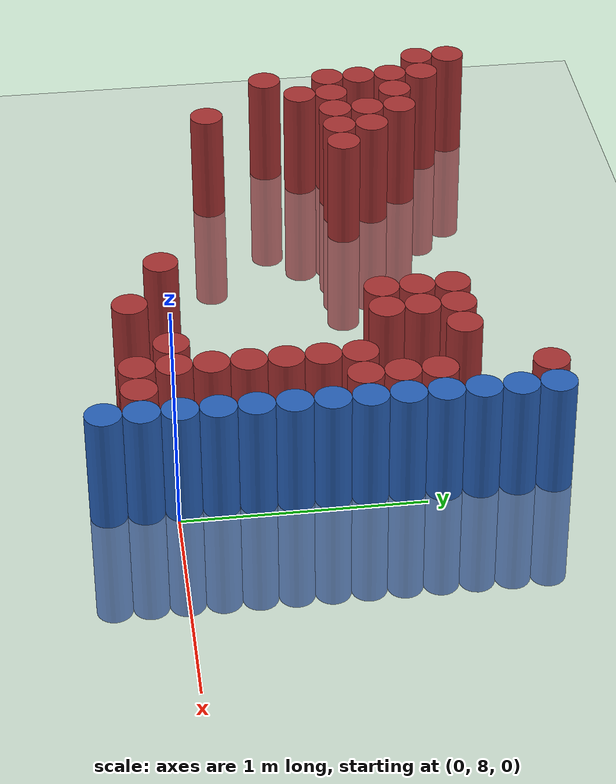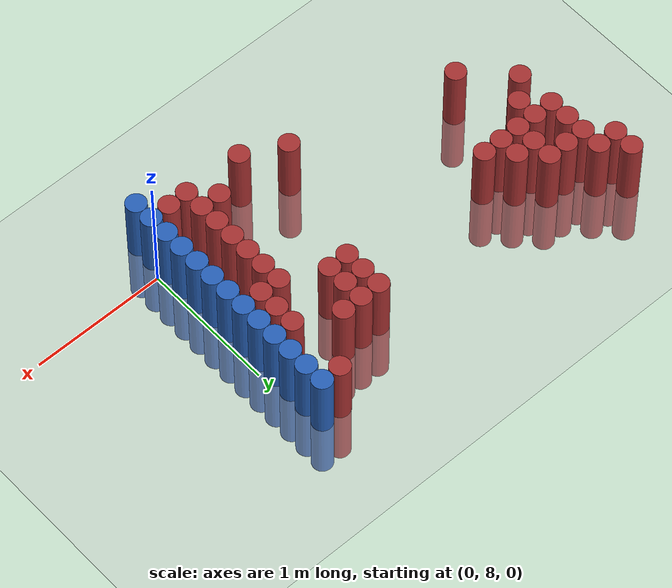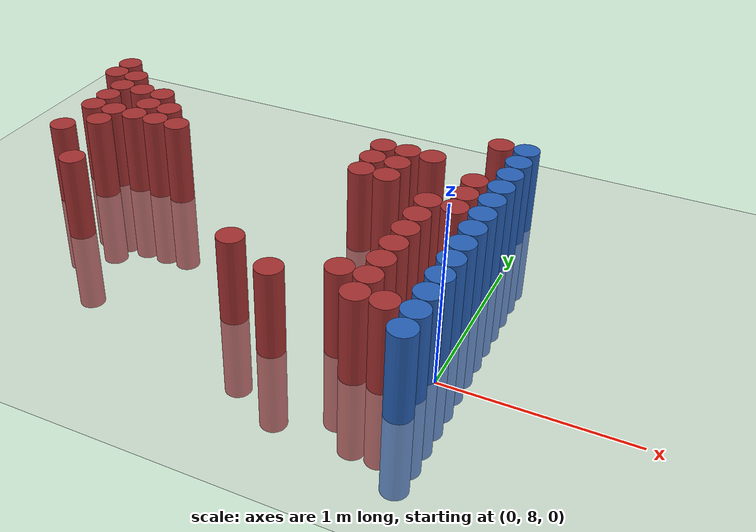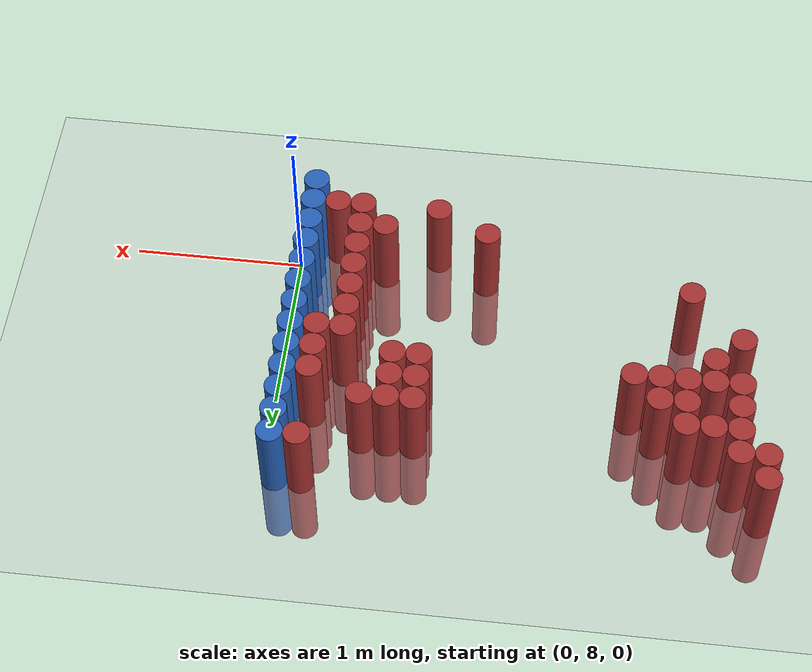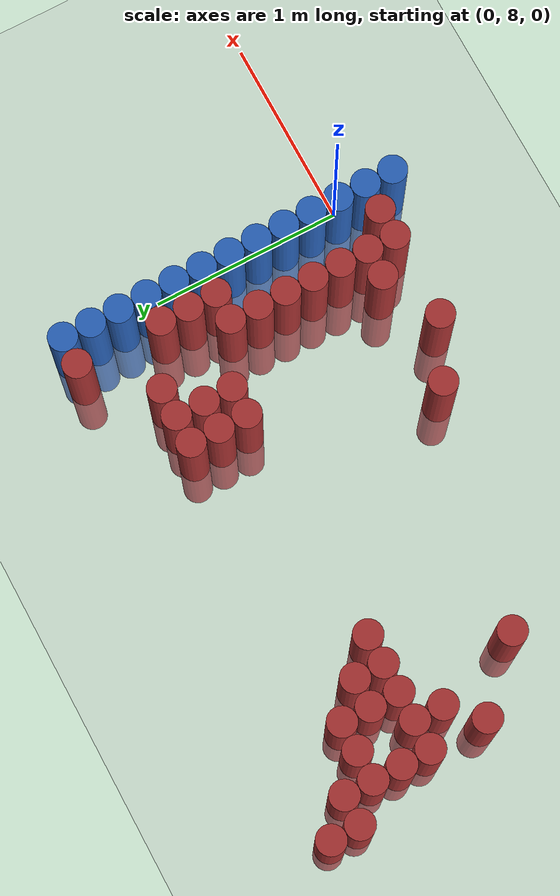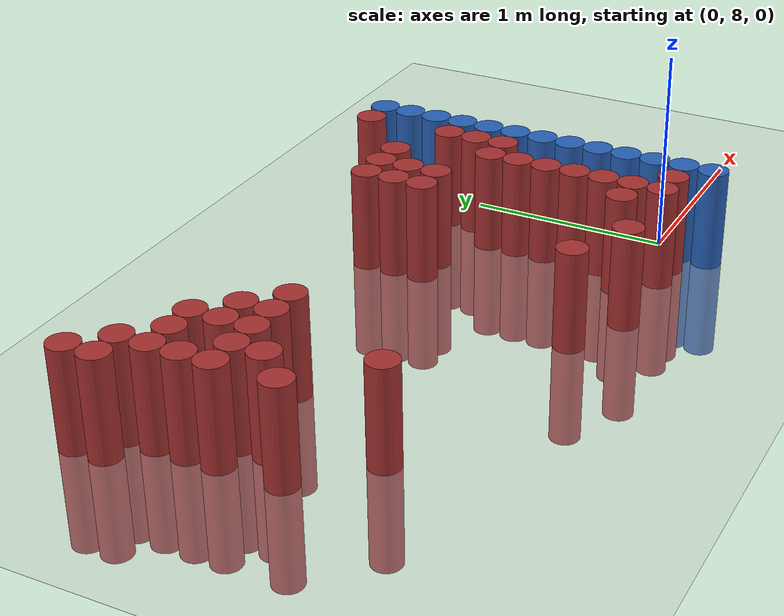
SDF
<sdf version="1.6">
 <world name="default">
  <model name="ground_plane">
   <static>1</static>
   <link name="link">
    <collision name="collision">
     <geometry><plane><normal>0 0 1</normal><size>100 100</size></plane></geometry>
     <surface><friction><ode><mu>100</mu><mu2>50</mu2></ode></friction></surface>
    </collision>
    <visual name="visual">
     <cast_shadows>0</cast_shadows>
     <geometry><plane><normal>0 0 1</normal><size>100 100</size></plane></geometry>
     <material>
      <script><uri>file://media/materials/scripts/gazebo.material</uri><name>Gazebo/Grey</name></script>
     </material>
    </visual>
   </link>
  </model>
  <model name="unit_cylinder_228">
   <static>1</static>
   <pose>-2.775000 9.375000 0.000000 0.000000 0.000000 0.000000</pose>
   <link name="link">
    <inertial>
     <mass>1</mass>
     <inertia><ixx>0.145833</ixx><ixy>0</ixy><ixz>0</ixz><iyy>0.145833</iyy><iyz>0</iyz><izz>0.125</izz></inertia>
    </inertial>
    <collision name="collision">
     <geometry><cylinder><radius>0.075000</radius><length>1</length></cylinder></geometry>
    </collision>
    <visual name="visual">
     <geometry><cylinder><radius>0.075000</radius><length>1</length></cylinder></geometry>
     <material>
      <ambient>0.648000 0.192000 0.192000 1</ambient>
      <diffuse>0.648000 0.192000 0.192000 1</diffuse>
     </material>
     <material>
      <script><name>Gazebo/Grey</name><uri>file://media/materials/scripts/gazebo.material</uri></script>
     </material>
    </visual>
   </link>
  </model>
  <model name="unit_cylinder_229">
   <static>1</static>
   <pose>-2.775000 9.525000 0.000000 0.000000 0.000000 0.000000</pose>
   <link name="link">
    <inertial>
     <mass>1</mass>
     <inertia><ixx>0.145833</ixx><ixy>0</ixy><ixz>0</ixz><iyy>0.145833</iyy><iyz>0</iyz><izz>0.125</izz></inertia>
    </inertial>
    <collision name="collision">
     <geometry><cylinder><radius>0.075000</radius><length>1</length></cylinder></geometry>
    </collision>
    <visual name="visual">
     <geometry><cylinder><radius>0.075000</radius><length>1</length></cylinder></geometry>
     <material>
      <ambient>0.648000 0.192000 0.192000 1</ambient>
      <diffuse>0.648000 0.192000 0.192000 1</diffuse>
     </material>
     <material>
      <script><name>Gazebo/Grey</name><uri>file://media/materials/scripts/gazebo.material</uri></script>
     </material>
    </visual>
   </link>
  </model>
  <model name="unit_cylinder_237">
   <static>1</static>
   <pose>-2.625000 8.625000 0.000000 0.000000 0.000000 0.000000</pose>
   <link name="link">
    <inertial>
     <mass>1</mass>
     <inertia><ixx>0.145833</ixx><ixy>0</ixy><ixz>0</ixz><iyy>0.145833</iyy><iyz>0</iyz><izz>0.125</izz></inertia>
    </inertial>
    <collision name="collision">
     <geometry><cylinder><radius>0.075000</radius><length>1</length></cylinder></geometry>
    </collision>
    <visual name="visual">
     <geometry><cylinder><radius>0.075000</radius><length>1</length></cylinder></geometry>
     <material>
      <ambient>0.648000 0.192000 0.192000 1</ambient>
      <diffuse>0.648000 0.192000 0.192000 1</diffuse>
     </material>
     <material>
      <script><name>Gazebo/Grey</name><uri>file://media/materials/scripts/gazebo.material</uri></script>
     </material>
    </visual>
   </link>
  </model>
  <model name="unit_cylinder_238">
   <static>1</static>
   <pose>-2.625000 8.925000 0.000000 0.000000 0.000000 0.000000</pose>
   <link name="link">
    <inertial>
     <mass>1</mass>
     <inertia><ixx>0.145833</ixx><ixy>0</ixy><ixz>0</ixz><iyy>0.145833</iyy><iyz>0</iyz><izz>0.125</izz></inertia>
    </inertial>
    <collision name="collision">
     <geometry><cylinder><radius>0.075000</radius><length>1</length></cylinder></geometry>
    </collision>
    <visual name="visual">
     <geometry><cylinder><radius>0.075000</radius><length>1</length></cylinder></geometry>
     <material>
      <ambient>0.648000 0.192000 0.192000 1</ambient>
      <diffuse>0.648000 0.192000 0.192000 1</diffuse>
     </material>
     <material>
      <script><name>Gazebo/Grey</name><uri>file://media/materials/scripts/gazebo.material</uri></script>
     </material>
    </visual>
   </link>
  </model>
  <model name="unit_cylinder_239">
   <static>1</static>
   <pose>-2.625000 9.075000 0.000000 0.000000 0.000000 0.000000</pose>
   <link name="link">
    <inertial>
     <mass>1</mass>
     <inertia><ixx>0.145833</ixx><ixy>0</ixy><ixz>0</ixz><iyy>0.145833</iyy><iyz>0</iyz><izz>0.125</izz></inertia>
    </inertial>
    <collision name="collision">
     <geometry><cylinder><radius>0.075000</radius><length>1</length></cylinder></geometry>
    </collision>
    <visual name="visual">
     <geometry><cylinder><radius>0.075000</radius><length>1</length></cylinder></geometry>
     <material>
      <ambient>0.648000 0.192000 0.192000 1</ambient>
      <diffuse>0.648000 0.192000 0.192000 1</diffuse>
     </material>
     <material>
      <script><name>Gazebo/Grey</name><uri>file://media/materials/scripts/gazebo.material</uri></script>
     </material>
    </visual>
   </link>
  </model>
  <model name="unit_cylinder_240">
   <static>1</static>
   <pose>-2.625000 9.225000 0.000000 0.000000 0.000000 0.000000</pose>
   <link name="link">
    <inertial>
     <mass>1</mass>
     <inertia><ixx>0.145833</ixx><ixy>0</ixy><ixz>0</ixz><iyy>0.145833</iyy><iyz>0</iyz><izz>0.125</izz></inertia>
    </inertial>
    <collision name="collision">
     <geometry><cylinder><radius>0.075000</radius><length>1</length></cylinder></geometry>
    </collision>
    <visual name="visual">
     <geometry><cylinder><radius>0.075000</radius><length>1</length></cylinder></geometry>
     <material>
      <ambient>0.648000 0.192000 0.192000 1</ambient>
      <diffuse>0.648000 0.192000 0.192000 1</diffuse>
     </material>
     <material>
      <script><name>Gazebo/Grey</name><uri>file://media/materials/scripts/gazebo.material</uri></script>
     </material>
    </visual>
   </link>
  </model>
  <model name="unit_cylinder_241">
   <static>1</static>
   <pose>-2.625000 9.375000 0.000000 0.000000 0.000000 0.000000</pose>
   <link name="link">
    <inertial>
     <mass>1</mass>
     <inertia><ixx>0.145833</ixx><ixy>0</ixy><ixz>0</ixz><iyy>0.145833</iyy><iyz>0</iyz><izz>0.125</izz></inertia>
    </inertial>
    <collision name="collision">
     <geometry><cylinder><radius>0.075000</radius><length>1</length></cylinder></geometry>
    </collision>
    <visual name="visual">
     <geometry><cylinder><radius>0.075000</radius><length>1</length></cylinder></geometry>
     <material>
      <ambient>0.648000 0.192000 0.192000 1</ambient>
      <diffuse>0.648000 0.192000 0.192000 1</diffuse>
     </material>
     <material>
      <script><name>Gazebo/Grey</name><uri>file://media/materials/scripts/gazebo.material</uri></script>
     </material>
    </visual>
   </link>
  </model>
  <model name="unit_cylinder_247">
   <static>1</static>
   <pose>-2.475000 8.775000 0.000000 0.000000 0.000000 0.000000</pose>
   <link name="link">
    <inertial>
     <mass>1</mass>
     <inertia><ixx>0.145833</ixx><ixy>0</ixy><ixz>0</ixz><iyy>0.145833</iyy><iyz>0</iyz><izz>0.125</izz></inertia>
    </inertial>
    <collision name="collision">
     <geometry><cylinder><radius>0.075000</radius><length>1</length></cylinder></geometry>
    </collision>
    <visual name="visual">
     <geometry><cylinder><radius>0.075000</radius><length>1</length></cylinder></geometry>
     <material>
      <ambient>0.648000 0.192000 0.192000 1</ambient>
      <diffuse>0.648000 0.192000 0.192000 1</diffuse>
     </material>
     <material>
      <script><name>Gazebo/Grey</name><uri>file://media/materials/scripts/gazebo.material</uri></script>
     </material>
    </visual>
   </link>
  </model>
  <model name="unit_cylinder_248">
   <static>1</static>
   <pose>-2.475000 8.925000 0.000000 0.000000 0.000000 0.000000</pose>
   <link name="link">
    <inertial>
     <mass>1</mass>
     <inertia><ixx>0.145833</ixx><ixy>0</ixy><ixz>0</ixz><iyy>0.145833</iyy><iyz>0</iyz><izz>0.125</izz></inertia>
    </inertial>
    <collision name="collision">
     <geometry><cylinder><radius>0.075000</radius><length>1</length></cylinder></geometry>
    </collision>
    <visual name="visual">
     <geometry><cylinder><radius>0.075000</radius><length>1</length></cylinder></geometry>
     <material>
      <ambient>0.648000 0.192000 0.192000 1</ambient>
      <diffuse>0.648000 0.192000 0.192000 1</diffuse>
     </material>
     <material>
      <script><name>Gazebo/Grey</name><uri>file://media/materials/scripts/gazebo.material</uri></script>
     </material>
    </visual>
   </link>
  </model>
  <model name="unit_cylinder_249">
   <static>1</static>
   <pose>-2.475000 9.225000 0.000000 0.000000 0.000000 0.000000</pose>
   <link name="link">
    <inertial>
     <mass>1</mass>
     <inertia><ixx>0.145833</ixx><ixy>0</ixy><ixz>0</ixz><iyy>0.145833</iyy><iyz>0</iyz><izz>0.125</izz></inertia>
    </inertial>
    <collision name="collision">
     <geometry><cylinder><radius>0.075000</radius><length>1</length></cylinder></geometry>
    </collision>
    <visual name="visual">
     <geometry><cylinder><radius>0.075000</radius><length>1</length></cylinder></geometry>
     <material>
      <ambient>0.648000 0.192000 0.192000 1</ambient>
      <diffuse>0.648000 0.192000 0.192000 1</diffuse>
     </material>
     <material>
      <script><name>Gazebo/Grey</name><uri>file://media/materials/scripts/gazebo.material</uri></script>
     </material>
    </visual>
   </link>
  </model>
  <model name="unit_cylinder_256">
   <static>1</static>
   <pose>-2.325000 8.325000 0.000000 0.000000 0.000000 0.000000</pose>
   <link name="link">
    <inertial>
     <mass>1</mass>
     <inertia><ixx>0.145833</ixx><ixy>0</ixy><ixz>0</ixz><iyy>0.145833</iyy><iyz>0</iyz><izz>0.125</izz></inertia>
    </inertial>
    <collision name="collision">
     <geometry><cylinder><radius>0.075000</radius><length>1</length></cylinder></geometry>
    </collision>
    <visual name="visual">
     <geometry><cylinder><radius>0.075000</radius><length>1</length></cylinder></geometry>
     <material>
      <ambient>0.648000 0.192000 0.192000 1</ambient>
      <diffuse>0.648000 0.192000 0.192000 1</diffuse>
     </material>
     <material>
      <script><name>Gazebo/Grey</name><uri>file://media/materials/scripts/gazebo.material</uri></script>
     </material>
    </visual>
   </link>
  </model>
  <model name="unit_cylinder_257">
   <static>1</static>
   <pose>-2.325000 8.925000 0.000000 0.000000 0.000000 0.000000</pose>
   <link name="link">
    <inertial>
     <mass>1</mass>
     <inertia><ixx>0.145833</ixx><ixy>0</ixy><ixz>0</ixz><iyy>0.145833</iyy><iyz>0</iyz><izz>0.125</izz></inertia>
    </inertial>
    <collision name="collision">
     <geometry><cylinder><radius>0.075000</radius><length>1</length></cylinder></geometry>
    </collision>
    <visual name="visual">
     <geometry><cylinder><radius>0.075000</radius><length>1</length></cylinder></geometry>
     <material>
      <ambient>0.648000 0.192000 0.192000 1</ambient>
      <diffuse>0.648000 0.192000 0.192000 1</diffuse>
     </material>
     <material>
      <script><name>Gazebo/Grey</name><uri>file://media/materials/scripts/gazebo.material</uri></script>
     </material>
    </visual>
   </link>
  </model>
  <model name="unit_cylinder_258">
   <static>1</static>
   <pose>-2.325000 9.075000 0.000000 0.000000 0.000000 0.000000</pose>
   <link name="link">
    <inertial>
     <mass>1</mass>
     <inertia><ixx>0.145833</ixx><ixy>0</ixy><ixz>0</ixz><iyy>0.145833</iyy><iyz>0</iyz><izz>0.125</izz></inertia>
    </inertial>
    <collision name="collision">
     <geometry><cylinder><radius>0.075000</radius><length>1</length></cylinder></geometry>
    </collision>
    <visual name="visual">
     <geometry><cylinder><radius>0.075000</radius><length>1</length></cylinder></geometry>
     <material>
      <ambient>0.648000 0.192000 0.192000 1</ambient>
      <diffuse>0.648000 0.192000 0.192000 1</diffuse>
     </material>
     <material>
      <script><name>Gazebo/Grey</name><uri>file://media/materials/scripts/gazebo.material</uri></script>
     </material>
    </visual>
   </link>
  </model>
  <model name="unit_cylinder_259">
   <static>1</static>
   <pose>-2.325000 9.225000 0.000000 0.000000 0.000000 0.000000</pose>
   <link name="link">
    <inertial>
     <mass>1</mass>
     <inertia><ixx>0.145833</ixx><ixy>0</ixy><ixz>0</ixz><iyy>0.145833</iyy><iyz>0</iyz><izz>0.125</izz></inertia>
    </inertial>
    <collision name="collision">
     <geometry><cylinder><radius>0.075000</radius><length>1</length></cylinder></geometry>
    </collision>
    <visual name="visual">
     <geometry><cylinder><radius>0.075000</radius><length>1</length></cylinder></geometry>
     <material>
      <ambient>0.648000 0.192000 0.192000 1</ambient>
      <diffuse>0.648000 0.192000 0.192000 1</diffuse>
     </material>
     <material>
      <script><name>Gazebo/Grey</name><uri>file://media/materials/scripts/gazebo.material</uri></script>
     </material>
    </visual>
   </link>
  </model>
  <model name="unit_cylinder_266">
   <static>1</static>
   <pose>-2.175000 8.925000 0.000000 0.000000 0.000000 0.000000</pose>
   <link name="link">
    <inertial>
     <mass>1</mass>
     <inertia><ixx>0.145833</ixx><ixy>0</ixy><ixz>0</ixz><iyy>0.145833</iyy><iyz>0</iyz><izz>0.125</izz></inertia>
    </inertial>
    <collision name="collision">
     <geometry><cylinder><radius>0.075000</radius><length>1</length></cylinder></geometry>
    </collision>
    <visual name="visual">
     <geometry><cylinder><radius>0.075000</radius><length>1</length></cylinder></geometry>
     <material>
      <ambient>0.648000 0.192000 0.192000 1</ambient>
      <diffuse>0.648000 0.192000 0.192000 1</diffuse>
     </material>
     <material>
      <script><name>Gazebo/Grey</name><uri>file://media/materials/scripts/gazebo.material</uri></script>
     </material>
    </visual>
   </link>
  </model>
  <model name="unit_cylinder_267">
   <static>1</static>
   <pose>-2.175000 9.075000 0.000000 0.000000 0.000000 0.000000</pose>
   <link name="link">
    <inertial>
     <mass>1</mass>
     <inertia><ixx>0.145833</ixx><ixy>0</ixy><ixz>0</ixz><iyy>0.145833</iyy><iyz>0</iyz><izz>0.125</izz></inertia>
    </inertial>
    <collision name="collision">
     <geometry><cylinder><radius>0.075000</radius><length>1</length></cylinder></geometry>
    </collision>
    <visual name="visual">
     <geometry><cylinder><radius>0.075000</radius><length>1</length></cylinder></geometry>
     <material>
      <ambient>0.648000 0.192000 0.192000 1</ambient>
      <diffuse>0.648000 0.192000 0.192000 1</diffuse>
     </material>
     <material>
      <script><name>Gazebo/Grey</name><uri>file://media/materials/scripts/gazebo.material</uri></script>
     </material>
    </visual>
   </link>
  </model>
  <model name="unit_cylinder_273">
   <static>1</static>
   <pose>-2.025000 8.925000 0.000000 0.000000 0.000000 0.000000</pose>
   <link name="link">
    <inertial>
     <mass>1</mass>
     <inertia><ixx>0.145833</ixx><ixy>0</ixy><ixz>0</ixz><iyy>0.145833</iyy><iyz>0</iyz><izz>0.125</izz></inertia>
    </inertial>
    <collision name="collision">
     <geometry><cylinder><radius>0.075000</radius><length>1</length></cylinder></geometry>
    </collision>
    <visual name="visual">
     <geometry><cylinder><radius>0.075000</radius><length>1</length></cylinder></geometry>
     <material>
      <ambient>0.648000 0.192000 0.192000 1</ambient>
      <diffuse>0.648000 0.192000 0.192000 1</diffuse>
     </material>
     <material>
      <script><name>Gazebo/Grey</name><uri>file://media/materials/scripts/gazebo.material</uri></script>
     </material>
    </visual>
   </link>
  </model>
  <model name="unit_cylinder_277">
   <static>1</static>
   <pose>-1.125000 8.025000 0.000000 0.000000 0.000000 0.000000</pose>
   <link name="link">
    <inertial>
     <mass>1</mass>
     <inertia><ixx>0.145833</ixx><ixy>0</ixy><ixz>0</ixz><iyy>0.145833</iyy><iyz>0</iyz><izz>0.125</izz></inertia>
    </inertial>
    <collision name="collision">
     <geometry><cylinder><radius>0.075000</radius><length>1</length></cylinder></geometry>
    </collision>
    <visual name="visual">
     <geometry><cylinder><radius>0.075000</radius><length>1</length></cylinder></geometry>
     <material>
      <ambient>0.648000 0.192000 0.192000 1</ambient>
      <diffuse>0.648000 0.192000 0.192000 1</diffuse>
     </material>
     <material>
      <script><name>Gazebo/Grey</name><uri>file://media/materials/scripts/gazebo.material</uri></script>
     </material>
    </visual>
   </link>
  </model>
  <model name="unit_cylinder_290">
   <static>1</static>
   <pose>-0.825000 7.875000 0.000000 0.000000 0.000000 0.000000</pose>
   <link name="link">
    <inertial>
     <mass>1</mass>
     <inertia><ixx>0.145833</ixx><ixy>0</ixy><ixz>0</ixz><iyy>0.145833</iyy><iyz>0</iyz><izz>0.125</izz></inertia>
    </inertial>
    <collision name="collision">
     <geometry><cylinder><radius>0.075000</radius><length>1</length></cylinder></geometry>
    </collision>
    <visual name="visual">
     <geometry><cylinder><radius>0.075000</radius><length>1</length></cylinder></geometry>
     <material>
      <ambient>0.648000 0.192000 0.192000 1</ambient>
      <diffuse>0.648000 0.192000 0.192000 1</diffuse>
     </material>
     <material>
      <script><name>Gazebo/Grey</name><uri>file://media/materials/scripts/gazebo.material</uri></script>
     </material>
    </visual>
   </link>
  </model>
  <model name="unit_cylinder_291">
   <static>1</static>
   <pose>-0.825000 8.925000 0.000000 0.000000 0.000000 0.000000</pose>
   <link name="link">
    <inertial>
     <mass>1</mass>
     <inertia><ixx>0.145833</ixx><ixy>0</ixy><ixz>0</ixz><iyy>0.145833</iyy><iyz>0</iyz><izz>0.125</izz></inertia>
    </inertial>
    <collision name="collision">
     <geometry><cylinder><radius>0.075000</radius><length>1</length></cylinder></geometry>
    </collision>
    <visual name="visual">
     <geometry><cylinder><radius>0.075000</radius><length>1</length></cylinder></geometry>
     <material>
      <ambient>0.648000 0.192000 0.192000 1</ambient>
      <diffuse>0.648000 0.192000 0.192000 1</diffuse>
     </material>
     <material>
      <script><name>Gazebo/Grey</name><uri>file://media/materials/scripts/gazebo.material</uri></script>
     </material>
    </visual>
   </link>
  </model>
  <model name="unit_cylinder_292">
   <static>1</static>
   <pose>-0.825000 9.075000 0.000000 0.000000 0.000000 0.000000</pose>
   <link name="link">
    <inertial>
     <mass>1</mass>
     <inertia><ixx>0.145833</ixx><ixy>0</ixy><ixz>0</ixz><iyy>0.145833</iyy><iyz>0</iyz><izz>0.125</izz></inertia>
    </inertial>
    <collision name="collision">
     <geometry><cylinder><radius>0.075000</radius><length>1</length></cylinder></geometry>
    </collision>
    <visual name="visual">
     <geometry><cylinder><radius>0.075000</radius><length>1</length></cylinder></geometry>
     <material>
      <ambient>0.648000 0.192000 0.192000 1</ambient>
      <diffuse>0.648000 0.192000 0.192000 1</diffuse>
     </material>
     <material>
      <script><name>Gazebo/Grey</name><uri>file://media/materials/scripts/gazebo.material</uri></script>
     </material>
    </visual>
   </link>
  </model>
  <model name="unit_cylinder_293">
   <static>1</static>
   <pose>-0.825000 9.225000 0.000000 0.000000 0.000000 0.000000</pose>
   <link name="link">
    <inertial>
     <mass>1</mass>
     <inertia><ixx>0.145833</ixx><ixy>0</ixy><ixz>0</ixz><iyy>0.145833</iyy><iyz>0</iyz><izz>0.125</izz></inertia>
    </inertial>
    <collision name="collision">
     <geometry><cylinder><radius>0.075000</radius><length>1</length></cylinder></geometry>
    </collision>
    <visual name="visual">
     <geometry><cylinder><radius>0.075000</radius><length>1</length></cylinder></geometry>
     <material>
      <ambient>0.648000 0.192000 0.192000 1</ambient>
      <diffuse>0.648000 0.192000 0.192000 1</diffuse>
     </material>
     <material>
      <script><name>Gazebo/Grey</name><uri>file://media/materials/scripts/gazebo.material</uri></script>
     </material>
    </visual>
   </link>
  </model>
  <model name="unit_cylinder_295">
   <static>1</static>
   <pose>-0.675000 8.925000 0.000000 0.000000 0.000000 0.000000</pose>
   <link name="link">
    <inertial>
     <mass>1</mass>
     <inertia><ixx>0.145833</ixx><ixy>0</ixy><ixz>0</ixz><iyy>0.145833</iyy><iyz>0</iyz><izz>0.125</izz></inertia>
    </inertial>
    <collision name="collision">
     <geometry><cylinder><radius>0.075000</radius><length>1</length></cylinder></geometry>
    </collision>
    <visual name="visual">
     <geometry><cylinder><radius>0.075000</radius><length>1</length></cylinder></geometry>
     <material>
      <ambient>0.648000 0.192000 0.192000 1</ambient>
      <diffuse>0.648000 0.192000 0.192000 1</diffuse>
     </material>
     <material>
      <script><name>Gazebo/Grey</name><uri>file://media/materials/scripts/gazebo.material</uri></script>
     </material>
    </visual>
   </link>
  </model>
  <model name="unit_cylinder_296">
   <static>1</static>
   <pose>-0.675000 9.075000 0.000000 0.000000 0.000000 0.000000</pose>
   <link name="link">
    <inertial>
     <mass>1</mass>
     <inertia><ixx>0.145833</ixx><ixy>0</ixy><ixz>0</ixz><iyy>0.145833</iyy><iyz>0</iyz><izz>0.125</izz></inertia>
    </inertial>
    <collision name="collision">
     <geometry><cylinder><radius>0.075000</radius><length>1</length></cylinder></geometry>
    </collision>
    <visual name="visual">
     <geometry><cylinder><radius>0.075000</radius><length>1</length></cylinder></geometry>
     <material>
      <ambient>0.648000 0.192000 0.192000 1</ambient>
      <diffuse>0.648000 0.192000 0.192000 1</diffuse>
     </material>
     <material>
      <script><name>Gazebo/Grey</name><uri>file://media/materials/scripts/gazebo.material</uri></script>
     </material>
    </visual>
   </link>
  </model>
  <model name="unit_cylinder_297">
   <static>1</static>
   <pose>-0.675000 9.225000 0.000000 0.000000 0.000000 0.000000</pose>
   <link name="link">
    <inertial>
     <mass>1</mass>
     <inertia><ixx>0.145833</ixx><ixy>0</ixy><ixz>0</ixz><iyy>0.145833</iyy><iyz>0</iyz><izz>0.125</izz></inertia>
    </inertial>
    <collision name="collision">
     <geometry><cylinder><radius>0.075000</radius><length>1</length></cylinder></geometry>
    </collision>
    <visual name="visual">
     <geometry><cylinder><radius>0.075000</radius><length>1</length></cylinder></geometry>
     <material>
      <ambient>0.648000 0.192000 0.192000 1</ambient>
      <diffuse>0.648000 0.192000 0.192000 1</diffuse>
     </material>
     <material>
      <script><name>Gazebo/Grey</name><uri>file://media/materials/scripts/gazebo.material</uri></script>
     </material>
    </visual>
   </link>
  </model>
  <model name="unit_cylinder_300">
   <static>1</static>
   <pose>-0.525000 8.025000 0.000000 0.000000 0.000000 0.000000</pose>
   <link name="link">
    <inertial>
     <mass>1</mass>
     <inertia><ixx>0.145833</ixx><ixy>0</ixy><ixz>0</ixz><iyy>0.145833</iyy><iyz>0</iyz><izz>0.125</izz></inertia>
    </inertial>
    <collision name="collision">
     <geometry><cylinder><radius>0.075000</radius><length>1</length></cylinder></geometry>
    </collision>
    <visual name="visual">
     <geometry><cylinder><radius>0.075000</radius><length>1</length></cylinder></geometry>
     <material>
      <ambient>0.648000 0.192000 0.192000 1</ambient>
      <diffuse>0.648000 0.192000 0.192000 1</diffuse>
     </material>
     <material>
      <script><name>Gazebo/Grey</name><uri>file://media/materials/scripts/gazebo.material</uri></script>
     </material>
    </visual>
   </link>
  </model>
  <model name="unit_cylinder_301">
   <static>1</static>
   <pose>-0.525000 9.225000 0.000000 0.000000 0.000000 0.000000</pose>
   <link name="link">
    <inertial>
     <mass>1</mass>
     <inertia><ixx>0.145833</ixx><ixy>0</ixy><ixz>0</ixz><iyy>0.145833</iyy><iyz>0</iyz><izz>0.125</izz></inertia>
    </inertial>
    <collision name="collision">
     <geometry><cylinder><radius>0.075000</radius><length>1</length></cylinder></geometry>
    </collision>
    <visual name="visual">
     <geometry><cylinder><radius>0.075000</radius><length>1</length></cylinder></geometry>
     <material>
      <ambient>0.648000 0.192000 0.192000 1</ambient>
      <diffuse>0.648000 0.192000 0.192000 1</diffuse>
     </material>
     <material>
      <script><name>Gazebo/Grey</name><uri>file://media/materials/scripts/gazebo.material</uri></script>
     </material>
    </visual>
   </link>
  </model>
  <model name="unit_cylinder_309">
   <static>1</static>
   <pose>-0.375000 7.875000 0.000000 0.000000 0.000000 0.000000</pose>
   <link name="link">
    <inertial>
     <mass>1</mass>
     <inertia><ixx>0.145833</ixx><ixy>0</ixy><ixz>0</ixz><iyy>0.145833</iyy><iyz>0</iyz><izz>0.125</izz></inertia>
    </inertial>
    <collision name="collision">
     <geometry><cylinder><radius>0.075000</radius><length>1</length></cylinder></geometry>
    </collision>
    <visual name="visual">
     <geometry><cylinder><radius>0.075000</radius><length>1</length></cylinder></geometry>
     <material>
      <ambient>0.648000 0.192000 0.192000 1</ambient>
      <diffuse>0.648000 0.192000 0.192000 1</diffuse>
     </material>
     <material>
      <script><name>Gazebo/Grey</name><uri>file://media/materials/scripts/gazebo.material</uri></script>
     </material>
    </visual>
   </link>
  </model>
  <model name="unit_cylinder_310">
   <static>1</static>
   <pose>-0.375000 8.025000 0.000000 0.000000 0.000000 0.000000</pose>
   <link name="link">
    <inertial>
     <mass>1</mass>
     <inertia><ixx>0.145833</ixx><ixy>0</ixy><ixz>0</ixz><iyy>0.145833</iyy><iyz>0</iyz><izz>0.125</izz></inertia>
    </inertial>
    <collision name="collision">
     <geometry><cylinder><radius>0.075000</radius><length>1</length></cylinder></geometry>
    </collision>
    <visual name="visual">
     <geometry><cylinder><radius>0.075000</radius><length>1</length></cylinder></geometry>
     <material>
      <ambient>0.648000 0.192000 0.192000 1</ambient>
      <diffuse>0.648000 0.192000 0.192000 1</diffuse>
     </material>
     <material>
      <script><name>Gazebo/Grey</name><uri>file://media/materials/scripts/gazebo.material</uri></script>
     </material>
    </visual>
   </link>
  </model>
  <model name="unit_cylinder_311">
   <static>1</static>
   <pose>-0.375000 8.175000 0.000000 0.000000 0.000000 0.000000</pose>
   <link name="link">
    <inertial>
     <mass>1</mass>
     <inertia><ixx>0.145833</ixx><ixy>0</ixy><ixz>0</ixz><iyy>0.145833</iyy><iyz>0</iyz><izz>0.125</izz></inertia>
    </inertial>
    <collision name="collision">
     <geometry><cylinder><radius>0.075000</radius><length>1</length></cylinder></geometry>
    </collision>
    <visual name="visual">
     <geometry><cylinder><radius>0.075000</radius><length>1</length></cylinder></geometry>
     <material>
      <ambient>0.648000 0.192000 0.192000 1</ambient>
      <diffuse>0.648000 0.192000 0.192000 1</diffuse>
     </material>
     <material>
      <script><name>Gazebo/Grey</name><uri>file://media/materials/scripts/gazebo.material</uri></script>
     </material>
    </visual>
   </link>
  </model>
  <model name="unit_cylinder_312">
   <static>1</static>
   <pose>-0.375000 8.325000 0.000000 0.000000 0.000000 0.000000</pose>
   <link name="link">
    <inertial>
     <mass>1</mass>
     <inertia><ixx>0.145833</ixx><ixy>0</ixy><ixz>0</ixz><iyy>0.145833</iyy><iyz>0</iyz><izz>0.125</izz></inertia>
    </inertial>
    <collision name="collision">
     <geometry><cylinder><radius>0.075000</radius><length>1</length></cylinder></geometry>
    </collision>
    <visual name="visual">
     <geometry><cylinder><radius>0.075000</radius><length>1</length></cylinder></geometry>
     <material>
      <ambient>0.648000 0.192000 0.192000 1</ambient>
      <diffuse>0.648000 0.192000 0.192000 1</diffuse>
     </material>
     <material>
      <script><name>Gazebo/Grey</name><uri>file://media/materials/scripts/gazebo.material</uri></script>
     </material>
    </visual>
   </link>
  </model>
  <model name="unit_cylinder_313">
   <static>1</static>
   <pose>-0.375000 8.475000 0.000000 0.000000 0.000000 0.000000</pose>
   <link name="link">
    <inertial>
     <mass>1</mass>
     <inertia><ixx>0.145833</ixx><ixy>0</ixy><ixz>0</ixz><iyy>0.145833</iyy><iyz>0</iyz><izz>0.125</izz></inertia>
    </inertial>
    <collision name="collision">
     <geometry><cylinder><radius>0.075000</radius><length>1</length></cylinder></geometry>
    </collision>
    <visual name="visual">
     <geometry><cylinder><radius>0.075000</radius><length>1</length></cylinder></geometry>
     <material>
      <ambient>0.648000 0.192000 0.192000 1</ambient>
      <diffuse>0.648000 0.192000 0.192000 1</diffuse>
     </material>
     <material>
      <script><name>Gazebo/Grey</name><uri>file://media/materials/scripts/gazebo.material</uri></script>
     </material>
    </visual>
   </link>
  </model>
  <model name="unit_cylinder_314">
   <static>1</static>
   <pose>-0.375000 8.625000 0.000000 0.000000 0.000000 0.000000</pose>
   <link name="link">
    <inertial>
     <mass>1</mass>
     <inertia><ixx>0.145833</ixx><ixy>0</ixy><ixz>0</ixz><iyy>0.145833</iyy><iyz>0</iyz><izz>0.125</izz></inertia>
    </inertial>
    <collision name="collision">
     <geometry><cylinder><radius>0.075000</radius><length>1</length></cylinder></geometry>
    </collision>
    <visual name="visual">
     <geometry><cylinder><radius>0.075000</radius><length>1</length></cylinder></geometry>
     <material>
      <ambient>0.648000 0.192000 0.192000 1</ambient>
      <diffuse>0.648000 0.192000 0.192000 1</diffuse>
     </material>
     <material>
      <script><name>Gazebo/Grey</name><uri>file://media/materials/scripts/gazebo.material</uri></script>
     </material>
    </visual>
   </link>
  </model>
  <model name="unit_cylinder_315">
   <static>1</static>
   <pose>-0.375000 8.775000 0.000000 0.000000 0.000000 0.000000</pose>
   <link name="link">
    <inertial>
     <mass>1</mass>
     <inertia><ixx>0.145833</ixx><ixy>0</ixy><ixz>0</ixz><iyy>0.145833</iyy><iyz>0</iyz><izz>0.125</izz></inertia>
    </inertial>
    <collision name="collision">
     <geometry><cylinder><radius>0.075000</radius><length>1</length></cylinder></geometry>
    </collision>
    <visual name="visual">
     <geometry><cylinder><radius>0.075000</radius><length>1</length></cylinder></geometry>
     <material>
      <ambient>0.648000 0.192000 0.192000 1</ambient>
      <diffuse>0.648000 0.192000 0.192000 1</diffuse>
     </material>
     <material>
      <script><name>Gazebo/Grey</name><uri>file://media/materials/scripts/gazebo.material</uri></script>
     </material>
    </visual>
   </link>
  </model>
  <model name="unit_cylinder_326">
   <static>1</static>
   <pose>-0.225000 7.875000 0.000000 0.000000 0.000000 0.000000</pose>
   <link name="link">
    <inertial>
     <mass>1</mass>
     <inertia><ixx>0.145833</ixx><ixy>0</ixy><ixz>0</ixz><iyy>0.145833</iyy><iyz>0</iyz><izz>0.125</izz></inertia>
    </inertial>
    <collision name="collision">
     <geometry><cylinder><radius>0.075000</radius><length>1</length></cylinder></geometry>
    </collision>
    <visual name="visual">
     <geometry><cylinder><radius>0.075000</radius><length>1</length></cylinder></geometry>
     <material>
      <ambient>0.648000 0.192000 0.192000 1</ambient>
      <diffuse>0.648000 0.192000 0.192000 1</diffuse>
     </material>
     <material>
      <script><name>Gazebo/Grey</name><uri>file://media/materials/scripts/gazebo.material</uri></script>
     </material>
    </visual>
   </link>
  </model>
  <model name="unit_cylinder_327">
   <static>1</static>
   <pose>-0.225000 8.775000 0.000000 0.000000 0.000000 0.000000</pose>
   <link name="link">
    <inertial>
     <mass>1</mass>
     <inertia><ixx>0.145833</ixx><ixy>0</ixy><ixz>0</ixz><iyy>0.145833</iyy><iyz>0</iyz><izz>0.125</izz></inertia>
    </inertial>
    <collision name="collision">
     <geometry><cylinder><radius>0.075000</radius><length>1</length></cylinder></geometry>
    </collision>
    <visual name="visual">
     <geometry><cylinder><radius>0.075000</radius><length>1</length></cylinder></geometry>
     <material>
      <ambient>0.648000 0.192000 0.192000 1</ambient>
      <diffuse>0.648000 0.192000 0.192000 1</diffuse>
     </material>
     <material>
      <script><name>Gazebo/Grey</name><uri>file://media/materials/scripts/gazebo.material</uri></script>
     </material>
    </visual>
   </link>
  </model>
  <model name="unit_cylinder_328">
   <static>1</static>
   <pose>-0.225000 8.925000 0.000000 0.000000 0.000000 0.000000</pose>
   <link name="link">
    <inertial>
     <mass>1</mass>
     <inertia><ixx>0.145833</ixx><ixy>0</ixy><ixz>0</ixz><iyy>0.145833</iyy><iyz>0</iyz><izz>0.125</izz></inertia>
    </inertial>
    <collision name="collision">
     <geometry><cylinder><radius>0.075000</radius><length>1</length></cylinder></geometry>
    </collision>
    <visual name="visual">
     <geometry><cylinder><radius>0.075000</radius><length>1</length></cylinder></geometry>
     <material>
      <ambient>0.648000 0.192000 0.192000 1</ambient>
      <diffuse>0.648000 0.192000 0.192000 1</diffuse>
     </material>
     <material>
      <script><name>Gazebo/Grey</name><uri>file://media/materials/scripts/gazebo.material</uri></script>
     </material>
    </visual>
   </link>
  </model>
  <model name="unit_cylinder_329">
   <static>1</static>
   <pose>-0.225000 9.075000 0.000000 0.000000 0.000000 0.000000</pose>
   <link name="link">
    <inertial>
     <mass>1</mass>
     <inertia><ixx>0.145833</ixx><ixy>0</ixy><ixz>0</ixz><iyy>0.145833</iyy><iyz>0</iyz><izz>0.125</izz></inertia>
    </inertial>
    <collision name="collision">
     <geometry><cylinder><radius>0.075000</radius><length>1</length></cylinder></geometry>
    </collision>
    <visual name="visual">
     <geometry><cylinder><radius>0.075000</radius><length>1</length></cylinder></geometry>
     <material>
      <ambient>0.648000 0.192000 0.192000 1</ambient>
      <diffuse>0.648000 0.192000 0.192000 1</diffuse>
     </material>
     <material>
      <script><name>Gazebo/Grey</name><uri>file://media/materials/scripts/gazebo.material</uri></script>
     </material>
    </visual>
   </link>
  </model>
  <model name="unit_cylinder_330">
   <static>1</static>
   <pose>-0.225000 9.525000 0.000000 0.000000 0.000000 0.000000</pose>
   <link name="link">
    <inertial>
     <mass>1</mass>
     <inertia><ixx>0.145833</ixx><ixy>0</ixy><ixz>0</ixz><iyy>0.145833</iyy><iyz>0</iyz><izz>0.125</izz></inertia>
    </inertial>
    <collision name="collision">
     <geometry><cylinder><radius>0.075000</radius><length>1</length></cylinder></geometry>
    </collision>
    <visual name="visual">
     <geometry><cylinder><radius>0.075000</radius><length>1</length></cylinder></geometry>
     <material>
      <ambient>0.648000 0.192000 0.192000 1</ambient>
      <diffuse>0.648000 0.192000 0.192000 1</diffuse>
     </material>
     <material>
      <script><name>Gazebo/Grey</name><uri>file://media/materials/scripts/gazebo.material</uri></script>
     </material>
    </visual>
   </link>
  </model>
  <model name="unit_cylinder_348">
   <static>1</static>
   <pose>-0.075000 7.725000 0.000000 0.000000 0.000000 0.000000</pose>
   <link name="link">
    <inertial>
     <mass>1</mass>
     <inertia><ixx>0.145833</ixx><ixy>0</ixy><ixz>0</ixz><iyy>0.145833</iyy><iyz>0</iyz><izz>0.125</izz></inertia>
    </inertial>
    <collision name="collision">
     <geometry><cylinder><radius>0.075000</radius><length>1</length></cylinder></geometry>
    </collision>
    <visual name="visual">
     <geometry><cylinder><radius>0.075000</radius><length>1</length></cylinder></geometry>
     <material>
      <ambient>0.152000 0.379000 0.720000 1</ambient>
      <diffuse>0.152000 0.379000 0.720000 1</diffuse>
     </material>
     <material>
      <script><name>Gazebo/Grey</name><uri>file://media/materials/scripts/gazebo.material</uri></script>
     </material>
    </visual>
   </link>
  </model>
  <model name="unit_cylinder_349">
   <static>1</static>
   <pose>-0.075000 7.875000 0.000000 0.000000 0.000000 0.000000</pose>
   <link name="link">
    <inertial>
     <mass>1</mass>
     <inertia><ixx>0.145833</ixx><ixy>0</ixy><ixz>0</ixz><iyy>0.145833</iyy><iyz>0</iyz><izz>0.125</izz></inertia>
    </inertial>
    <collision name="collision">
     <geometry><cylinder><radius>0.075000</radius><length>1</length></cylinder></geometry>
    </collision>
    <visual name="visual">
     <geometry><cylinder><radius>0.075000</radius><length>1</length></cylinder></geometry>
     <material>
      <ambient>0.152000 0.379000 0.720000 1</ambient>
      <diffuse>0.152000 0.379000 0.720000 1</diffuse>
     </material>
     <material>
      <script><name>Gazebo/Grey</name><uri>file://media/materials/scripts/gazebo.material</uri></script>
     </material>
    </visual>
   </link>
  </model>
  <model name="unit_cylinder_350">
   <static>1</static>
   <pose>-0.075000 8.025000 0.000000 0.000000 0.000000 0.000000</pose>
   <link name="link">
    <inertial>
     <mass>1</mass>
     <inertia><ixx>0.145833</ixx><ixy>0</ixy><ixz>0</ixz><iyy>0.145833</iyy><iyz>0</iyz><izz>0.125</izz></inertia>
    </inertial>
    <collision name="collision">
     <geometry><cylinder><radius>0.075000</radius><length>1</length></cylinder></geometry>
    </collision>
    <visual name="visual">
     <geometry><cylinder><radius>0.075000</radius><length>1</length></cylinder></geometry>
     <material>
      <ambient>0.152000 0.379000 0.720000 1</ambient>
      <diffuse>0.152000 0.379000 0.720000 1</diffuse>
     </material>
     <material>
      <script><name>Gazebo/Grey</name><uri>file://media/materials/scripts/gazebo.material</uri></script>
     </material>
    </visual>
   </link>
  </model>
  <model name="unit_cylinder_351">
   <static>1</static>
   <pose>-0.075000 8.175000 0.000000 0.000000 0.000000 0.000000</pose>
   <link name="link">
    <inertial>
     <mass>1</mass>
     <inertia><ixx>0.145833</ixx><ixy>0</ixy><ixz>0</ixz><iyy>0.145833</iyy><iyz>0</iyz><izz>0.125</izz></inertia>
    </inertial>
    <collision name="collision">
     <geometry><cylinder><radius>0.075000</radius><length>1</length></cylinder></geometry>
    </collision>
    <visual name="visual">
     <geometry><cylinder><radius>0.075000</radius><length>1</length></cylinder></geometry>
     <material>
      <ambient>0.152000 0.379000 0.720000 1</ambient>
      <diffuse>0.152000 0.379000 0.720000 1</diffuse>
     </material>
     <material>
      <script><name>Gazebo/Grey</name><uri>file://media/materials/scripts/gazebo.material</uri></script>
     </material>
    </visual>
   </link>
  </model>
  <model name="unit_cylinder_352">
   <static>1</static>
   <pose>-0.075000 8.325000 0.000000 0.000000 0.000000 0.000000</pose>
   <link name="link">
    <inertial>
     <mass>1</mass>
     <inertia><ixx>0.145833</ixx><ixy>0</ixy><ixz>0</ixz><iyy>0.145833</iyy><iyz>0</iyz><izz>0.125</izz></inertia>
    </inertial>
    <collision name="collision">
     <geometry><cylinder><radius>0.075000</radius><length>1</length></cylinder></geometry>
    </collision>
    <visual name="visual">
     <geometry><cylinder><radius>0.075000</radius><length>1</length></cylinder></geometry>
     <material>
      <ambient>0.152000 0.379000 0.720000 1</ambient>
      <diffuse>0.152000 0.379000 0.720000 1</diffuse>
     </material>
     <material>
      <script><name>Gazebo/Grey</name><uri>file://media/materials/scripts/gazebo.material</uri></script>
     </material>
    </visual>
   </link>
  </model>
  <model name="unit_cylinder_353">
   <static>1</static>
   <pose>-0.075000 8.475000 0.000000 0.000000 0.000000 0.000000</pose>
   <link name="link">
    <inertial>
     <mass>1</mass>
     <inertia><ixx>0.145833</ixx><ixy>0</ixy><ixz>0</ixz><iyy>0.145833</iyy><iyz>0</iyz><izz>0.125</izz></inertia>
    </inertial>
    <collision name="collision">
     <geometry><cylinder><radius>0.075000</radius><length>1</length></cylinder></geometry>
    </collision>
    <visual name="visual">
     <geometry><cylinder><radius>0.075000</radius><length>1</length></cylinder></geometry>
     <material>
      <ambient>0.152000 0.379000 0.720000 1</ambient>
      <diffuse>0.152000 0.379000 0.720000 1</diffuse>
     </material>
     <material>
      <script><name>Gazebo/Grey</name><uri>file://media/materials/scripts/gazebo.material</uri></script>
     </material>
    </visual>
   </link>
  </model>
  <model name="unit_cylinder_354">
   <static>1</static>
   <pose>-0.075000 8.625000 0.000000 0.000000 0.000000 0.000000</pose>
   <link name="link">
    <inertial>
     <mass>1</mass>
     <inertia><ixx>0.145833</ixx><ixy>0</ixy><ixz>0</ixz><iyy>0.145833</iyy><iyz>0</iyz><izz>0.125</izz></inertia>
    </inertial>
    <collision name="collision">
     <geometry><cylinder><radius>0.075000</radius><length>1</length></cylinder></geometry>
    </collision>
    <visual name="visual">
     <geometry><cylinder><radius>0.075000</radius><length>1</length></cylinder></geometry>
     <material>
      <ambient>0.152000 0.379000 0.720000 1</ambient>
      <diffuse>0.152000 0.379000 0.720000 1</diffuse>
     </material>
     <material>
      <script><name>Gazebo/Grey</name><uri>file://media/materials/scripts/gazebo.material</uri></script>
     </material>
    </visual>
   </link>
  </model>
  <model name="unit_cylinder_355">
   <static>1</static>
   <pose>-0.075000 8.775000 0.000000 0.000000 0.000000 0.000000</pose>
   <link name="link">
    <inertial>
     <mass>1</mass>
     <inertia><ixx>0.145833</ixx><ixy>0</ixy><ixz>0</ixz><iyy>0.145833</iyy><iyz>0</iyz><izz>0.125</izz></inertia>
    </inertial>
    <collision name="collision">
     <geometry><cylinder><radius>0.075000</radius><length>1</length></cylinder></geometry>
    </collision>
    <visual name="visual">
     <geometry><cylinder><radius>0.075000</radius><length>1</length></cylinder></geometry>
     <material>
      <ambient>0.152000 0.379000 0.720000 1</ambient>
      <diffuse>0.152000 0.379000 0.720000 1</diffuse>
     </material>
     <material>
      <script><name>Gazebo/Grey</name><uri>file://media/materials/scripts/gazebo.material</uri></script>
     </material>
    </visual>
   </link>
  </model>
  <model name="unit_cylinder_356">
   <static>1</static>
   <pose>-0.075000 8.925000 0.000000 0.000000 0.000000 0.000000</pose>
   <link name="link">
    <inertial>
     <mass>1</mass>
     <inertia><ixx>0.145833</ixx><ixy>0</ixy><ixz>0</ixz><iyy>0.145833</iyy><iyz>0</iyz><izz>0.125</izz></inertia>
    </inertial>
    <collision name="collision">
     <geometry><cylinder><radius>0.075000</radius><length>1</length></cylinder></geometry>
    </collision>
    <visual name="visual">
     <geometry><cylinder><radius>0.075000</radius><length>1</length></cylinder></geometry>
     <material>
      <ambient>0.152000 0.379000 0.720000 1</ambient>
      <diffuse>0.152000 0.379000 0.720000 1</diffuse>
     </material>
     <material>
      <script><name>Gazebo/Grey</name><uri>file://media/materials/scripts/gazebo.material</uri></script>
     </material>
    </visual>
   </link>
  </model>
  <model name="unit_cylinder_357">
   <static>1</static>
   <pose>-0.075000 9.075000 0.000000 0.000000 0.000000 0.000000</pose>
   <link name="link">
    <inertial>
     <mass>1</mass>
     <inertia><ixx>0.145833</ixx><ixy>0</ixy><ixz>0</ixz><iyy>0.145833</iyy><iyz>0</iyz><izz>0.125</izz></inertia>
    </inertial>
    <collision name="collision">
     <geometry><cylinder><radius>0.075000</radius><length>1</length></cylinder></geometry>
    </collision>
    <visual name="visual">
     <geometry><cylinder><radius>0.075000</radius><length>1</length></cylinder></geometry>
     <material>
      <ambient>0.152000 0.379000 0.720000 1</ambient>
      <diffuse>0.152000 0.379000 0.720000 1</diffuse>
     </material>
     <material>
      <script><name>Gazebo/Grey</name><uri>file://media/materials/scripts/gazebo.material</uri></script>
     </material>
    </visual>
   </link>
  </model>
  <model name="unit_cylinder_358">
   <static>1</static>
   <pose>-0.075000 9.225000 0.000000 0.000000 0.000000 0.000000</pose>
   <link name="link">
    <inertial>
     <mass>1</mass>
     <inertia><ixx>0.145833</ixx><ixy>0</ixy><ixz>0</ixz><iyy>0.145833</iyy><iyz>0</iyz><izz>0.125</izz></inertia>
    </inertial>
    <collision name="collision">
     <geometry><cylinder><radius>0.075000</radius><length>1</length></cylinder></geometry>
    </collision>
    <visual name="visual">
     <geometry><cylinder><radius>0.075000</radius><length>1</length></cylinder></geometry>
     <material>
      <ambient>0.152000 0.379000 0.720000 1</ambient>
      <diffuse>0.152000 0.379000 0.720000 1</diffuse>
     </material>
     <material>
      <script><name>Gazebo/Grey</name><uri>file://media/materials/scripts/gazebo.material</uri></script>
     </material>
    </visual>
   </link>
  </model>
  <model name="unit_cylinder_359">
   <static>1</static>
   <pose>-0.075000 9.375000 0.000000 0.000000 0.000000 0.000000</pose>
   <link name="link">
    <inertial>
     <mass>1</mass>
     <inertia><ixx>0.145833</ixx><ixy>0</ixy><ixz>0</ixz><iyy>0.145833</iyy><iyz>0</iyz><izz>0.125</izz></inertia>
    </inertial>
    <collision name="collision">
     <geometry><cylinder><radius>0.075000</radius><length>1</length></cylinder></geometry>
    </collision>
    <visual name="visual">
     <geometry><cylinder><radius>0.075000</radius><length>1</length></cylinder></geometry>
     <material>
      <ambient>0.152000 0.379000 0.720000 1</ambient>
      <diffuse>0.152000 0.379000 0.720000 1</diffuse>
     </material>
     <material>
      <script><name>Gazebo/Grey</name><uri>file://media/materials/scripts/gazebo.material</uri></script>
     </material>
    </visual>
   </link>
  </model>
  <model name="unit_cylinder_360">
   <static>1</static>
   <pose>-0.075000 9.525000 0.000000 0.000000 0.000000 0.000000</pose>
   <link name="link">
    <inertial>
     <mass>1</mass>
     <inertia><ixx>0.145833</ixx><ixy>0</ixy><ixz>0</ixz><iyy>0.145833</iyy><iyz>0</iyz><izz>0.125</izz></inertia>
    </inertial>
    <collision name="collision">
     <geometry><cylinder><radius>0.075000</radius><length>1</length></cylinder></geometry>
    </collision>
    <visual name="visual">
     <geometry><cylinder><radius>0.075000</radius><length>1</length></cylinder></geometry>
     <material>
      <ambient>0.152000 0.379000 0.720000 1</ambient>
      <diffuse>0.152000 0.379000 0.720000 1</diffuse>
     </material>
     <material>
      <script><name>Gazebo/Grey</name><uri>file://media/materials/scripts/gazebo.material</uri></script>
     </material>
    </visual>
   </link>
  </model>
 </world>
</sdf>
